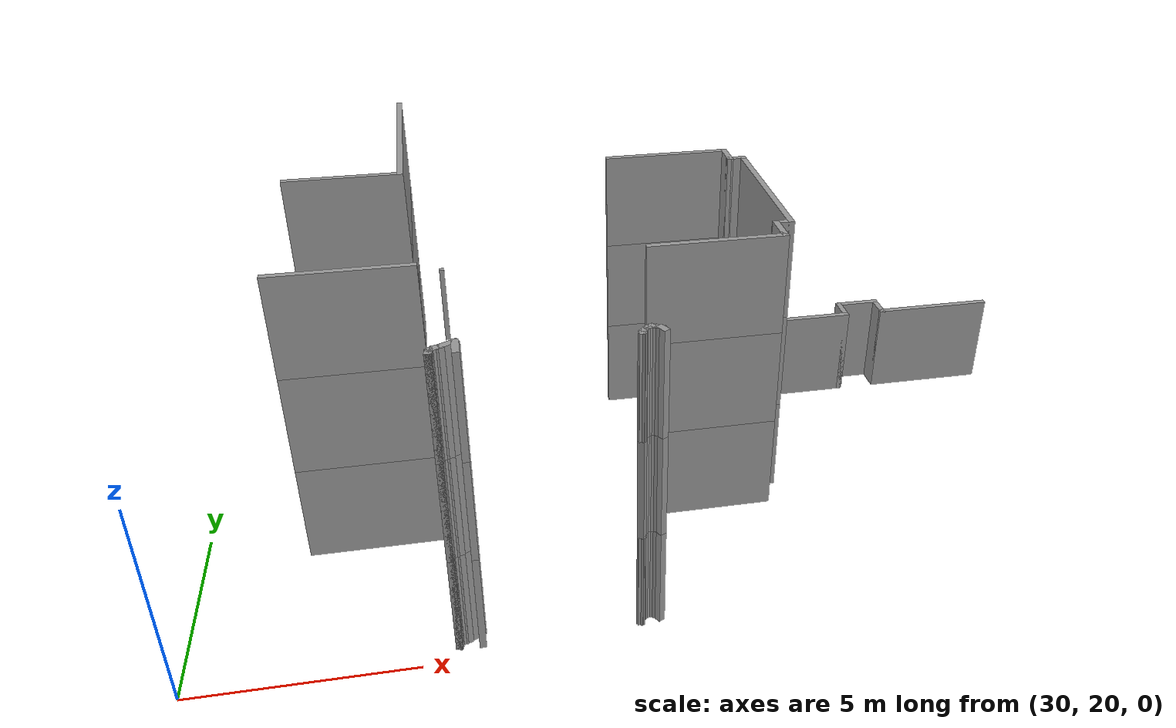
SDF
<sdf version="1.7">
 <model name="mapagazebo">
  <pose>-4.67869 9.01252 0 0 -0 0</pose>
  <link name="Wall_1233">
   <collision name="Wall_1233_Collision">
    <geometry><box><size>3.25 0.15 2.5</size></box></geometry>
    <pose>0 0 1.25 0 -0 0</pose>
   </collision>
   <visual name="Wall_1233_Visual">
    <pose>0 0 1.25 0 -0 0</pose>
    <geometry><box><size>3.25 0.15 2.5</size></box></geometry>
    <material>
     <script><uri>file://media/materials/scripts/gazebo.material</uri><name>Gazebo/Grey</name></script>
     <ambient>1 1 1 1</ambient>
    </material>
    <meta><layer>1</layer></meta>
   </visual>
   <pose>38.7249 15.127 2.5 0 -0 3.14159</pose>
  </link>
  <link name="Wall_1239">
   <collision name="Wall_1239_Collision">
    <geometry><box><size>3 0.15 2.5</size></box></geometry>
    <pose>0 0 1.25 0 -0 0</pose>
   </collision>
   <visual name="Wall_1239_Visual">
    <pose>0 0 1.25 0 -0 0</pose>
    <geometry><box><size>3 0.15 2.5</size></box></geometry>
    <material>
     <script><uri>file://media/materials/scripts/gazebo.material</uri><name>Gazebo/Grey</name></script>
     <ambient>1 1 1 1</ambient>
    </material>
    <meta><layer>1</layer></meta>
   </visual>
   <pose>38.5999 20.427 2.5 0 -0 0</pose>
  </link>
  <link name="Wall_1240">
   <collision name="Wall_1240_Collision">
    <geometry><box><size>5.75 0.15 2.5</size></box></geometry>
    <pose>0 0 1.25 0 -0 0</pose>
   </collision>
   <visual name="Wall_1240_Visual">
    <pose>0 0 1.25 0 -0 0</pose>
    <geometry><box><size>5.75 0.15 2.5</size></box></geometry>
    <material>
     <script><uri>file://media/materials/scripts/gazebo.material</uri><name>Gazebo/Grey</name></script>
     <ambient>1 1 1 1</ambient>
    </material>
    <meta><layer>1</layer></meta>
   </visual>
   <pose>40.0249 23.227 2.5 0 -0 1.5708</pose>
  </link>
  <link name="Wall_1244">
   <collision name="Wall_1244_Collision">
    <geometry><box><size>3.25 0.15 2.5</size></box></geometry>
    <pose>0 0 1.25 0 -0 0</pose>
   </collision>
   <visual name="Wall_1244_Visual">
    <pose>0 0 1.25 0 -0 0</pose>
    <geometry><box><size>3.25 0.15 2.5</size></box></geometry>
    <material>
     <script><uri>file://media/materials/scripts/gazebo.material</uri><name>Gazebo/Grey</name></script>
     <ambient>1 1 1 1</ambient>
    </material>
    <meta><layer>1</layer></meta>
   </visual>
   <pose>46.9249 20.527 2.5 0 -0 0</pose>
  </link>
  <link name="Wall_1245">
   <collision name="Wall_1245_Collision">
    <geometry><box><size>0.75 0.15 2.5</size></box></geometry>
    <pose>0 0 1.25 0 -0 0</pose>
   </collision>
   <visual name="Wall_1245_Visual">
    <pose>0 0 1.25 0 -0 0</pose>
    <geometry><box><size>0.75 0.15 2.5</size></box></geometry>
    <material>
     <script><uri>file://media/materials/scripts/gazebo.material</uri><name>Gazebo/Grey</name></script>
     <ambient>1 1 1 1</ambient>
    </material>
    <meta><layer>1</layer></meta>
   </visual>
   <pose>48.4749 20.227 2.5 0 -0 -1.5708</pose>
  </link>
  <link name="Wall_1246">
   <collision name="Wall_1246_Collision">
    <geometry><box><size>0.5 0.15 2.5</size></box></geometry>
    <pose>0 0 1.25 0 -0 0</pose>
   </collision>
   <visual name="Wall_1246_Visual">
    <pose>0 0 1.25 0 -0 0</pose>
    <geometry><box><size>0.5 0.15 2.5</size></box></geometry>
    <material>
     <script><uri>file://media/materials/scripts/gazebo.material</uri><name>Gazebo/Grey</name></script>
     <ambient>1 1 1 1</ambient>
    </material>
    <meta><layer>1</layer></meta>
   </visual>
   <pose>48.6499 19.927 2.5 0 -0 0</pose>
  </link>
  <link name="Wall_1247">
   <collision name="Wall_1247_Collision">
    <geometry><box><size>4.25 0.15 2.5</size></box></geometry>
    <pose>0 0 1.25 0 -0 0</pose>
   </collision>
   <visual name="Wall_1247_Visual">
    <pose>0 0 1.25 0 -0 0</pose>
    <geometry><box><size>4.25 0.15 2.5</size></box></geometry>
    <material>
     <script><uri>file://media/materials/scripts/gazebo.material</uri><name>Gazebo/Grey</name></script>
     <ambient>1 1 1 1</ambient>
    </material>
    <meta><layer>1</layer></meta>
   </visual>
   <pose>48.8249 17.877 2.5 0 -0 -1.5708</pose>
  </link>
  <link name="Wall_1248">
   <collision name="Wall_1248_Collision">
    <geometry><box><size>0.5 0.15 2.5</size></box></geometry>
    <pose>0 0 1.25 0 -0 0</pose>
   </collision>
   <visual name="Wall_1248_Visual">
    <pose>0 0 1.25 0 -0 0</pose>
    <geometry><box><size>0.5 0.15 2.5</size></box></geometry>
    <material>
     <script><uri>file://media/materials/scripts/gazebo.material</uri><name>Gazebo/Grey</name></script>
     <ambient>1 1 1 1</ambient>
    </material>
    <meta><layer>1</layer></meta>
   </visual>
   <pose>48.6499 15.827 2.5 0 -0 3.14159</pose>
  </link>
  <link name="Wall_1249">
   <collision name="Wall_1249_Collision">
    <geometry><box><size>0.75 0.15 2.5</size></box></geometry>
    <pose>0 0 1.25 0 -0 0</pose>
   </collision>
   <visual name="Wall_1249_Visual">
    <pose>0 0 1.25 0 -0 0</pose>
    <geometry><box><size>0.75 0.15 2.5</size></box></geometry>
    <material>
     <script><uri>file://media/materials/scripts/gazebo.material</uri><name>Gazebo/Grey</name></script>
     <ambient>1 1 1 1</ambient>
    </material>
    <meta><layer>1</layer></meta>
   </visual>
   <pose>48.4749 15.527 2.5 0 -0 -1.5708</pose>
  </link>
  <link name="Wall_1250">
   <collision name="Wall_1250_Collision">
    <geometry><box><size>0.25 0.15 2.5</size></box></geometry>
    <pose>0 0 1.25 0 -0 0</pose>
   </collision>
   <visual name="Wall_1250_Visual">
    <pose>0 0 1.25 0 -0 0</pose>
    <geometry><box><size>0.25 0.15 2.5</size></box></geometry>
    <material>
     <script><uri>file://media/materials/scripts/gazebo.material</uri><name>Gazebo/Grey</name></script>
     <ambient>1 1 1 1</ambient>
    </material>
    <meta><layer>1</layer></meta>
   </visual>
   <pose>48.4749 15.177 2.5 0 -0 -1.5708</pose>
  </link>
  <link name="Wall_1251">
   <collision name="Wall_1251_Collision">
    <geometry><box><size>3.25 0.15 2.5</size></box></geometry>
    <pose>0 0 1.25 0 -0 0</pose>
   </collision>
   <visual name="Wall_1251_Visual">
    <pose>0 0 1.25 0 -0 0</pose>
    <geometry><box><size>3.25 0.15 2.5</size></box></geometry>
    <material>
     <script><uri>file://media/materials/scripts/gazebo.material</uri><name>Gazebo/Grey</name></script>
     <ambient>1 1 1 1</ambient>
    </material>
    <meta><layer>1</layer></meta>
   </visual>
   <pose>46.9249 15.127 2.5 0 -0 3.14159</pose>
  </link>
  <link name="Wall_1259">
   <collision name="Wall_1259_Collision">
    <geometry><box><size>0.25 0.15 2.5</size></box></geometry>
    <pose>0 0 1.25 0 -0 0</pose>
   </collision>
   <visual name="Wall_1259_Visual">
    <pose>0 0 1.25 0 -0 0</pose>
    <geometry><box><size>0.25 0.15 2.5</size></box></geometry>
    <material>
     <script><uri>file://media/materials/scripts/gazebo.material</uri><name>Gazebo/Grey</name></script>
     <ambient>1 1 1 1</ambient>
    </material>
    <meta><layer>1</layer></meta>
   </visual>
   <pose>40.5051 11.4482 2.5 0 -0 1.309</pose>
  </link>
  <link name="Wall_1260">
   <collision name="Wall_1260_Collision">
    <geometry><box><size>0.25 0.15 2.5</size></box></geometry>
    <pose>0 0 1.25 0 -0 0</pose>
   </collision>
   <visual name="Wall_1260_Visual">
    <pose>0 0 1.25 0 -0 0</pose>
    <geometry><box><size>0.25 0.15 2.5</size></box></geometry>
    <material>
     <script><uri>file://media/materials/scripts/gazebo.material</uri><name>Gazebo/Grey</name></script>
     <ambient>1 1 1 1</ambient>
    </material>
    <meta><layer>1</layer></meta>
   </visual>
   <pose>40.5051 11.4482 2.5 0 -0 -1.8326</pose>
  </link>
  <link name="Wall_1261">
   <collision name="Wall_1261_Collision">
    <geometry><box><size>0.25 0.15 2.5</size></box></geometry>
    <pose>0 0 1.25 0 -0 0</pose>
   </collision>
   <visual name="Wall_1261_Visual">
    <pose>0 0 1.25 0 -0 0</pose>
    <geometry><box><size>0.25 0.15 2.5</size></box></geometry>
    <material>
     <script><uri>file://media/materials/scripts/gazebo.material</uri><name>Gazebo/Grey</name></script>
     <ambient>1 1 1 1</ambient>
    </material>
    <meta><layer>1</layer></meta>
   </visual>
   <pose>40.5051 11.4482 2.5 0 -0 1.309</pose>
  </link>
  <link name="Wall_1262">
   <collision name="Wall_1262_Collision">
    <geometry><box><size>0.25 0.15 2.5</size></box></geometry>
    <pose>0 0 1.25 0 -0 0</pose>
   </collision>
   <visual name="Wall_1262_Visual">
    <pose>0 0 1.25 0 -0 0</pose>
    <geometry><box><size>0.25 0.15 2.5</size></box></geometry>
    <material>
     <script><uri>file://media/materials/scripts/gazebo.material</uri><name>Gazebo/Grey</name></script>
     <ambient>1 1 1 1</ambient>
    </material>
    <meta><layer>1</layer></meta>
   </visual>
   <pose>40.5613 11.5215 2.5 0 -0 0.523599</pose>
  </link>
  <link name="Wall_1263">
   <collision name="Wall_1263_Collision">
    <geometry><box><size>0.15 0.15 2.5</size></box></geometry>
    <pose>0 0 1.25 0 -0 0</pose>
   </collision>
   <visual name="Wall_1263_Visual">
    <pose>0 0 1.25 0 -0 0</pose>
    <geometry><box><size>0.15 0.15 2.5</size></box></geometry>
    <material>
     <script><uri>file://media/materials/scripts/gazebo.material</uri><name>Gazebo/Grey</name></script>
     <ambient>1 1 1 1</ambient>
    </material>
    <meta><layer>1</layer></meta>
   </visual>
   <pose>40.6046 11.5465 2.5 0 -0 0</pose>
  </link>
  <link name="Wall_1264">
   <collision name="Wall_1264_Collision">
    <geometry><box><size>0.25 0.15 2.5</size></box></geometry>
    <pose>0 0 1.25 0 -0 0</pose>
   </collision>
   <visual name="Wall_1264_Visual">
    <pose>0 0 1.25 0 -0 0</pose>
    <geometry><box><size>0.25 0.15 2.5</size></box></geometry>
    <material>
     <script><uri>file://media/materials/scripts/gazebo.material</uri><name>Gazebo/Grey</name></script>
     <ambient>1 1 1 1</ambient>
    </material>
    <meta><layer>1</layer></meta>
   </visual>
   <pose>40.6529 11.5595 2.5 0 -0 0.261799</pose>
  </link>
  <link name="Wall_1272">
   <collision name="Wall_1272_Collision">
    <geometry><box><size>0.5 0.15 2.5</size></box></geometry>
    <pose>0 0 1.25 0 -0 0</pose>
   </collision>
   <visual name="Wall_1272_Visual">
    <pose>0 0 1.25 0 -0 0</pose>
    <geometry><box><size>0.5 0.15 2.5</size></box></geometry>
    <material>
     <script><uri>file://media/materials/scripts/gazebo.material</uri><name>Gazebo/Grey</name></script>
     <ambient>1 1 1 1</ambient>
    </material>
    <meta><layer>1</layer></meta>
   </visual>
   <pose>40.985 11.5508 2.5 0 -0 1.5708</pose>
  </link>
  <link name="Wall_1273">
   <collision name="Wall_1273_Collision">
    <geometry><box><size>0.670196 0.15 2.5</size></box></geometry>
    <pose>0 0 1.25 0 -0 0</pose>
   </collision>
   <visual name="Wall_1273_Visual">
    <pose>0 0 1.25 0 -0 0</pose>
    <geometry><box><size>0.670196 0.15 2.5</size></box></geometry>
    <material>
     <script><uri>file://media/materials/scripts/gazebo.material</uri><name>Gazebo/Grey</name></script>
     <ambient>1 1 1 1</ambient>
    </material>
    <meta><layer>1</layer></meta>
   </visual>
   <pose>40.7515 11.6111 2.5 0 -0 -2.68526</pose>
  </link>
  <link name="Wall_1276">
   <collision name="Wall_1276_Collision">
    <geometry><box><size>0.25 0.15 2.5</size></box></geometry>
    <pose>0 0 1.25 0 -0 0</pose>
   </collision>
   <visual name="Wall_1276_Visual">
    <pose>0 0 1.25 0 -0 0</pose>
    <geometry><box><size>0.25 0.15 2.5</size></box></geometry>
    <material>
     <script><uri>file://media/materials/scripts/gazebo.material</uri><name>Gazebo/Grey</name></script>
     <ambient>1 1 1 1</ambient>
    </material>
    <meta><layer>1</layer></meta>
   </visual>
   <pose>44.5236 11.4559 2.5 0 -0 1.0472</pose>
  </link>
  <link name="Wall_1277">
   <collision name="Wall_1277_Collision">
    <geometry><box><size>0.25 0.15 2.5</size></box></geometry>
    <pose>0 0 1.25 0 -0 0</pose>
   </collision>
   <visual name="Wall_1277_Visual">
    <pose>0 0 1.25 0 -0 0</pose>
    <geometry><box><size>0.25 0.15 2.5</size></box></geometry>
    <material>
     <script><uri>file://media/materials/scripts/gazebo.material</uri><name>Gazebo/Grey</name></script>
     <ambient>1 1 1 1</ambient>
    </material>
    <meta><layer>1</layer></meta>
   </visual>
   <pose>44.584 11.5345 2.5 0 -0 0.785398</pose>
  </link>
  <link name="Wall_1278">
   <collision name="Wall_1278_Collision">
    <geometry><box><size>0.25 0.15 2.5</size></box></geometry>
    <pose>0 0 1.25 0 -0 0</pose>
   </collision>
   <visual name="Wall_1278_Visual">
    <pose>0 0 1.25 0 -0 0</pose>
    <geometry><box><size>0.25 0.15 2.5</size></box></geometry>
    <material>
     <script><uri>file://media/materials/scripts/gazebo.material</uri><name>Gazebo/Grey</name></script>
     <ambient>1 1 1 1</ambient>
    </material>
    <meta><layer>1</layer></meta>
   </visual>
   <pose>44.6627 11.5949 2.5 0 -0 0.523599</pose>
  </link>
  <link name="Wall_1279">
   <collision name="Wall_1279_Collision">
    <geometry><box><size>0.25 0.15 2.5</size></box></geometry>
    <pose>0 0 1.25 0 -0 0</pose>
   </collision>
   <visual name="Wall_1279_Visual">
    <pose>0 0 1.25 0 -0 0</pose>
    <geometry><box><size>0.25 0.15 2.5</size></box></geometry>
    <material>
     <script><uri>file://media/materials/scripts/gazebo.material</uri><name>Gazebo/Grey</name></script>
     <ambient>1 1 1 1</ambient>
    </material>
    <meta><layer>1</layer></meta>
   </visual>
   <pose>44.7543 11.607 2.5 0 -0 -0.261799</pose>
  </link>
  <link name="Wall_1280">
   <collision name="Wall_1280_Collision">
    <geometry><box><size>0.25 0.15 2.5</size></box></geometry>
    <pose>0 0 1.25 0 -0 0</pose>
   </collision>
   <visual name="Wall_1280_Visual">
    <pose>0 0 1.25 0 -0 0</pose>
    <geometry><box><size>0.25 0.15 2.5</size></box></geometry>
    <material>
     <script><uri>file://media/materials/scripts/gazebo.material</uri><name>Gazebo/Grey</name></script>
     <ambient>1 1 1 1</ambient>
    </material>
    <meta><layer>1</layer></meta>
   </visual>
   <pose>44.8458 11.569 2.5 0 -0 -0.523599</pose>
  </link>
  <link name="Wall_1281">
   <collision name="Wall_1281_Collision">
    <geometry><box><size>0.25 0.15 2.5</size></box></geometry>
    <pose>0 0 1.25 0 -0 0</pose>
   </collision>
   <visual name="Wall_1281_Visual">
    <pose>0 0 1.25 0 -0 0</pose>
    <geometry><box><size>0.25 0.15 2.5</size></box></geometry>
    <material>
     <script><uri>file://media/materials/scripts/gazebo.material</uri><name>Gazebo/Grey</name></script>
     <ambient>1 1 1 1</ambient>
    </material>
    <meta><layer>1</layer></meta>
   </visual>
   <pose>44.9142 11.5007 2.5 0 -0 -1.0472</pose>
  </link>
  <link name="Wall_1857">
   <collision name="Wall_1857_Collision">
    <geometry><box><size>3.25 0.15 2.5</size></box></geometry>
    <pose>0 0 1.25 0 -0 0</pose>
   </collision>
   <visual name="Wall_1857_Visual">
    <pose>0 0 1.25 0 -0 0</pose>
    <geometry><box><size>3.25 0.15 2.5</size></box></geometry>
    <material>
     <script><uri>file://media/materials/scripts/gazebo.material</uri><name>Gazebo/Grey</name></script>
     <ambient>1 1 1 1</ambient>
    </material>
    <meta><layer>2</layer></meta>
   </visual>
   <pose>38.7249 15.127 5 0 -0 3.14159</pose>
  </link>
  <link name="Wall_1863">
   <collision name="Wall_1863_Collision">
    <geometry><box><size>3 0.15 2.5</size></box></geometry>
    <pose>0 0 1.25 0 -0 0</pose>
   </collision>
   <visual name="Wall_1863_Visual">
    <pose>0 0 1.25 0 -0 0</pose>
    <geometry><box><size>3 0.15 2.5</size></box></geometry>
    <material>
     <script><uri>file://media/materials/scripts/gazebo.material</uri><name>Gazebo/Grey</name></script>
     <ambient>1 1 1 1</ambient>
    </material>
    <meta><layer>2</layer></meta>
   </visual>
   <pose>38.5999 20.427 5 0 -0 0</pose>
  </link>
  <link name="Wall_1864">
   <collision name="Wall_1864_Collision">
    <geometry><box><size>5.75 0.15 2.5</size></box></geometry>
    <pose>0 0 1.25 0 -0 0</pose>
   </collision>
   <visual name="Wall_1864_Visual">
    <pose>0 0 1.25 0 -0 0</pose>
    <geometry><box><size>5.75 0.15 2.5</size></box></geometry>
    <material>
     <script><uri>file://media/materials/scripts/gazebo.material</uri><name>Gazebo/Grey</name></script>
     <ambient>1 1 1 1</ambient>
    </material>
    <meta><layer>2</layer></meta>
   </visual>
   <pose>40.0249 23.227 5 0 -0 1.5708</pose>
  </link>
  <link name="Wall_1868">
   <collision name="Wall_1868_Collision">
    <geometry><box><size>3.25 0.15 2.5</size></box></geometry>
    <pose>0 0 1.25 0 -0 0</pose>
   </collision>
   <visual name="Wall_1868_Visual">
    <pose>0 0 1.25 0 -0 0</pose>
    <geometry><box><size>3.25 0.15 2.5</size></box></geometry>
    <material>
     <script><uri>file://media/materials/scripts/gazebo.material</uri><name>Gazebo/Grey</name></script>
     <ambient>1 1 1 1</ambient>
    </material>
    <meta><layer>2</layer></meta>
   </visual>
   <pose>46.9249 20.527 5 0 -0 0</pose>
  </link>
  <link name="Wall_1869">
   <collision name="Wall_1869_Collision">
    <geometry><box><size>0.75 0.15 2.5</size></box></geometry>
    <pose>0 0 1.25 0 -0 0</pose>
   </collision>
   <visual name="Wall_1869_Visual">
    <pose>0 0 1.25 0 -0 0</pose>
    <geometry><box><size>0.75 0.15 2.5</size></box></geometry>
    <material>
     <script><uri>file://media/materials/scripts/gazebo.material</uri><name>Gazebo/Grey</name></script>
     <ambient>1 1 1 1</ambient>
    </material>
    <meta><layer>2</layer></meta>
   </visual>
   <pose>48.4749 20.227 5 0 -0 -1.5708</pose>
  </link>
  <link name="Wall_1870">
   <collision name="Wall_1870_Collision">
    <geometry><box><size>0.5 0.15 2.5</size></box></geometry>
    <pose>0 0 1.25 0 -0 0</pose>
   </collision>
   <visual name="Wall_1870_Visual">
    <pose>0 0 1.25 0 -0 0</pose>
    <geometry><box><size>0.5 0.15 2.5</size></box></geometry>
    <material>
     <script><uri>file://media/materials/scripts/gazebo.material</uri><name>Gazebo/Grey</name></script>
     <ambient>1 1 1 1</ambient>
    </material>
    <meta><layer>2</layer></meta>
   </visual>
   <pose>48.6499 19.927 5 0 -0 0</pose>
  </link>
  <link name="Wall_1871">
   <collision name="Wall_1871_Collision">
    <geometry><box><size>4.25 0.15 2.5</size></box></geometry>
    <pose>0 0 1.25 0 -0 0</pose>
   </collision>
   <visual name="Wall_1871_Visual">
    <pose>0 0 1.25 0 -0 0</pose>
    <geometry><box><size>4.25 0.15 2.5</size></box></geometry>
    <material>
     <script><uri>file://media/materials/scripts/gazebo.material</uri><name>Gazebo/Grey</name></script>
     <ambient>1 1 1 1</ambient>
    </material>
    <meta><layer>2</layer></meta>
   </visual>
   <pose>48.8249 17.877 5 0 -0 -1.5708</pose>
  </link>
  <link name="Wall_1872">
   <collision name="Wall_1872_Collision">
    <geometry><box><size>0.5 0.15 2.5</size></box></geometry>
    <pose>0 0 1.25 0 -0 0</pose>
   </collision>
   <visual name="Wall_1872_Visual">
    <pose>0 0 1.25 0 -0 0</pose>
    <geometry><box><size>0.5 0.15 2.5</size></box></geometry>
    <material>
     <script><uri>file://media/materials/scripts/gazebo.material</uri><name>Gazebo/Grey</name></script>
     <ambient>1 1 1 1</ambient>
    </material>
    <meta><layer>2</layer></meta>
   </visual>
   <pose>48.6499 15.827 5 0 -0 3.14159</pose>
  </link>
  <link name="Wall_1873">
   <collision name="Wall_1873_Collision">
    <geometry><box><size>0.75 0.15 2.5</size></box></geometry>
    <pose>0 0 1.25 0 -0 0</pose>
   </collision>
   <visual name="Wall_1873_Visual">
    <pose>0 0 1.25 0 -0 0</pose>
    <geometry><box><size>0.75 0.15 2.5</size></box></geometry>
    <material>
     <script><uri>file://media/materials/scripts/gazebo.material</uri><name>Gazebo/Grey</name></script>
     <ambient>1 1 1 1</ambient>
    </material>
    <meta><layer>2</layer></meta>
   </visual>
   <pose>48.4749 15.527 5 0 -0 -1.5708</pose>
  </link>
  <link name="Wall_1874">
   <collision name="Wall_1874_Collision">
    <geometry><box><size>0.25 0.15 2.5</size></box></geometry>
    <pose>0 0 1.25 0 -0 0</pose>
   </collision>
   <visual name="Wall_1874_Visual">
    <pose>0 0 1.25 0 -0 0</pose>
    <geometry><box><size>0.25 0.15 2.5</size></box></geometry>
    <material>
     <script><uri>file://media/materials/scripts/gazebo.material</uri><name>Gazebo/Grey</name></script>
     <ambient>1 1 1 1</ambient>
    </material>
    <meta><layer>2</layer></meta>
   </visual>
   <pose>48.4749 15.177 5 0 -0 -1.5708</pose>
  </link>
  <link name="Wall_1875">
   <collision name="Wall_1875_Collision">
    <geometry><box><size>3.25 0.15 2.5</size></box></geometry>
    <pose>0 0 1.25 0 -0 0</pose>
   </collision>
   <visual name="Wall_1875_Visual">
    <pose>0 0 1.25 0 -0 0</pose>
    <geometry><box><size>3.25 0.15 2.5</size></box></geometry>
    <material>
     <script><uri>file://media/materials/scripts/gazebo.material</uri><name>Gazebo/Grey</name></script>
     <ambient>1 1 1 1</ambient>
    </material>
    <meta><layer>2</layer></meta>
   </visual>
   <pose>46.9249 15.127 5 0 -0 3.14159</pose>
  </link>
  <link name="Wall_1883">
   <collision name="Wall_1883_Collision">
    <geometry><box><size>0.25 0.15 2.5</size></box></geometry>
    <pose>0 0 1.25 0 -0 0</pose>
   </collision>
   <visual name="Wall_1883_Visual">
    <pose>0 0 1.25 0 -0 0</pose>
    <geometry><box><size>0.25 0.15 2.5</size></box></geometry>
    <material>
     <script><uri>file://media/materials/scripts/gazebo.material</uri><name>Gazebo/Grey</name></script>
     <ambient>1 1 1 1</ambient>
    </material>
    <meta><layer>2</layer></meta>
   </visual>
   <pose>40.5051 11.4482 5 0 -0 1.309</pose>
  </link>
  <link name="Wall_1884">
   <collision name="Wall_1884_Collision">
    <geometry><box><size>0.25 0.15 2.5</size></box></geometry>
    <pose>0 0 1.25 0 -0 0</pose>
   </collision>
   <visual name="Wall_1884_Visual">
    <pose>0 0 1.25 0 -0 0</pose>
    <geometry><box><size>0.25 0.15 2.5</size></box></geometry>
    <material>
     <script><uri>file://media/materials/scripts/gazebo.material</uri><name>Gazebo/Grey</name></script>
     <ambient>1 1 1 1</ambient>
    </material>
    <meta><layer>2</layer></meta>
   </visual>
   <pose>40.5051 11.4482 5 0 -0 -1.8326</pose>
  </link>
  <link name="Wall_1885">
   <collision name="Wall_1885_Collision">
    <geometry><box><size>0.25 0.15 2.5</size></box></geometry>
    <pose>0 0 1.25 0 -0 0</pose>
   </collision>
   <visual name="Wall_1885_Visual">
    <pose>0 0 1.25 0 -0 0</pose>
    <geometry><box><size>0.25 0.15 2.5</size></box></geometry>
    <material>
     <script><uri>file://media/materials/scripts/gazebo.material</uri><name>Gazebo/Grey</name></script>
     <ambient>1 1 1 1</ambient>
    </material>
    <meta><layer>2</layer></meta>
   </visual>
   <pose>40.5051 11.4482 5 0 -0 1.309</pose>
  </link>
  <link name="Wall_1886">
   <collision name="Wall_1886_Collision">
    <geometry><box><size>0.25 0.15 2.5</size></box></geometry>
    <pose>0 0 1.25 0 -0 0</pose>
   </collision>
   <visual name="Wall_1886_Visual">
    <pose>0 0 1.25 0 -0 0</pose>
    <geometry><box><size>0.25 0.15 2.5</size></box></geometry>
    <material>
     <script><uri>file://media/materials/scripts/gazebo.material</uri><name>Gazebo/Grey</name></script>
     <ambient>1 1 1 1</ambient>
    </material>
    <meta><layer>2</layer></meta>
   </visual>
   <pose>40.5613 11.5215 5 0 -0 0.523599</pose>
  </link>
  <link name="Wall_1887">
   <collision name="Wall_1887_Collision">
    <geometry><box><size>0.15 0.15 2.5</size></box></geometry>
    <pose>0 0 1.25 0 -0 0</pose>
   </collision>
   <visual name="Wall_1887_Visual">
    <pose>0 0 1.25 0 -0 0</pose>
    <geometry><box><size>0.15 0.15 2.5</size></box></geometry>
    <material>
     <script><uri>file://media/materials/scripts/gazebo.material</uri><name>Gazebo/Grey</name></script>
     <ambient>1 1 1 1</ambient>
    </material>
    <meta><layer>2</layer></meta>
   </visual>
   <pose>40.6046 11.5465 5 0 -0 0</pose>
  </link>
  <link name="Wall_1888">
   <collision name="Wall_1888_Collision">
    <geometry><box><size>0.25 0.15 2.5</size></box></geometry>
    <pose>0 0 1.25 0 -0 0</pose>
   </collision>
   <visual name="Wall_1888_Visual">
    <pose>0 0 1.25 0 -0 0</pose>
    <geometry><box><size>0.25 0.15 2.5</size></box></geometry>
    <material>
     <script><uri>file://media/materials/scripts/gazebo.material</uri><name>Gazebo/Grey</name></script>
     <ambient>1 1 1 1</ambient>
    </material>
    <meta><layer>2</layer></meta>
   </visual>
   <pose>40.6529 11.5595 5 0 -0 0.261799</pose>
  </link>
  <link name="Wall_1896">
   <collision name="Wall_1896_Collision">
    <geometry><box><size>0.5 0.15 2.5</size></box></geometry>
    <pose>0 0 1.25 0 -0 0</pose>
   </collision>
   <visual name="Wall_1896_Visual">
    <pose>0 0 1.25 0 -0 0</pose>
    <geometry><box><size>0.5 0.15 2.5</size></box></geometry>
    <material>
     <script><uri>file://media/materials/scripts/gazebo.material</uri><name>Gazebo/Grey</name></script>
     <ambient>1 1 1 1</ambient>
    </material>
    <meta><layer>2</layer></meta>
   </visual>
   <pose>40.985 11.5508 5 0 -0 1.5708</pose>
  </link>
  <link name="Wall_1897">
   <collision name="Wall_1897_Collision">
    <geometry><box><size>0.670196 0.15 2.5</size></box></geometry>
    <pose>0 0 1.25 0 -0 0</pose>
   </collision>
   <visual name="Wall_1897_Visual">
    <pose>0 0 1.25 0 -0 0</pose>
    <geometry><box><size>0.670196 0.15 2.5</size></box></geometry>
    <material>
     <script><uri>file://media/materials/scripts/gazebo.material</uri><name>Gazebo/Grey</name></script>
     <ambient>1 1 1 1</ambient>
    </material>
    <meta><layer>2</layer></meta>
   </visual>
   <pose>40.7515 11.6111 5 0 -0 -2.68526</pose>
  </link>
  <link name="Wall_1899">
   <collision name="Wall_1899_Collision">
    <geometry><box><size>0.15 0.15 2.5</size></box></geometry>
    <pose>0 0 1.25 0 -0 0</pose>
   </collision>
   <visual name="Wall_1899_Visual">
    <pose>0 0 1.25 0 -0 0</pose>
    <geometry><box><size>0.15 0.15 2.5</size></box></geometry>
    <material>
     <script><uri>file://media/materials/scripts/gazebo.material</uri><name>Gazebo/Grey</name></script>
     <ambient>1 1 1 1</ambient>
    </material>
    <meta><layer>2</layer></meta>
   </visual>
   <pose>44.4986 11.4126 5 0 -0 0</pose>
  </link>
  <link name="Wall_1900">
   <collision name="Wall_1900_Collision">
    <geometry><box><size>0.25 0.15 2.5</size></box></geometry>
    <pose>0 0 1.25 0 -0 0</pose>
   </collision>
   <visual name="Wall_1900_Visual">
    <pose>0 0 1.25 0 -0 0</pose>
    <geometry><box><size>0.25 0.15 2.5</size></box></geometry>
    <material>
     <script><uri>file://media/materials/scripts/gazebo.material</uri><name>Gazebo/Grey</name></script>
     <ambient>1 1 1 1</ambient>
    </material>
    <meta><layer>2</layer></meta>
   </visual>
   <pose>44.5236 11.4559 5 0 -0 1.0472</pose>
  </link>
  <link name="Wall_1901">
   <collision name="Wall_1901_Collision">
    <geometry><box><size>0.25 0.15 2.5</size></box></geometry>
    <pose>0 0 1.25 0 -0 0</pose>
   </collision>
   <visual name="Wall_1901_Visual">
    <pose>0 0 1.25 0 -0 0</pose>
    <geometry><box><size>0.25 0.15 2.5</size></box></geometry>
    <material>
     <script><uri>file://media/materials/scripts/gazebo.material</uri><name>Gazebo/Grey</name></script>
     <ambient>1 1 1 1</ambient>
    </material>
    <meta><layer>2</layer></meta>
   </visual>
   <pose>44.584 11.5345 5 0 -0 0.785398</pose>
  </link>
  <link name="Wall_1902">
   <collision name="Wall_1902_Collision">
    <geometry><box><size>0.25 0.15 2.5</size></box></geometry>
    <pose>0 0 1.25 0 -0 0</pose>
   </collision>
   <visual name="Wall_1902_Visual">
    <pose>0 0 1.25 0 -0 0</pose>
    <geometry><box><size>0.25 0.15 2.5</size></box></geometry>
    <material>
     <script><uri>file://media/materials/scripts/gazebo.material</uri><name>Gazebo/Grey</name></script>
     <ambient>1 1 1 1</ambient>
    </material>
    <meta><layer>2</layer></meta>
   </visual>
   <pose>44.6627 11.5949 5 0 -0 0.523599</pose>
  </link>
  <link name="Wall_1903">
   <collision name="Wall_1903_Collision">
    <geometry><box><size>0.25 0.15 2.5</size></box></geometry>
    <pose>0 0 1.25 0 -0 0</pose>
   </collision>
   <visual name="Wall_1903_Visual">
    <pose>0 0 1.25 0 -0 0</pose>
    <geometry><box><size>0.25 0.15 2.5</size></box></geometry>
    <material>
     <script><uri>file://media/materials/scripts/gazebo.material</uri><name>Gazebo/Grey</name></script>
     <ambient>1 1 1 1</ambient>
    </material>
    <meta><layer>2</layer></meta>
   </visual>
   <pose>44.7543 11.607 5 0 -0 -0.261799</pose>
  </link>
  <link name="Wall_1904">
   <collision name="Wall_1904_Collision">
    <geometry><box><size>0.25 0.15 2.5</size></box></geometry>
    <pose>0 0 1.25 0 -0 0</pose>
   </collision>
   <visual name="Wall_1904_Visual">
    <pose>0 0 1.25 0 -0 0</pose>
    <geometry><box><size>0.25 0.15 2.5</size></box></geometry>
    <material>
     <script><uri>file://media/materials/scripts/gazebo.material</uri><name>Gazebo/Grey</name></script>
     <ambient>1 1 1 1</ambient>
    </material>
    <meta><layer>2</layer></meta>
   </visual>
   <pose>44.8458 11.569 5 0 -0 -0.523599</pose>
  </link>
  <link name="Wall_1905">
   <collision name="Wall_1905_Collision">
    <geometry><box><size>0.25 0.15 2.5</size></box></geometry>
    <pose>0 0 1.25 0 -0 0</pose>
   </collision>
   <visual name="Wall_1905_Visual">
    <pose>0 0 1.25 0 -0 0</pose>
    <geometry><box><size>0.25 0.15 2.5</size></box></geometry>
    <material>
     <script><uri>file://media/materials/scripts/gazebo.material</uri><name>Gazebo/Grey</name></script>
     <ambient>1 1 1 1</ambient>
    </material>
    <meta><layer>2</layer></meta>
   </visual>
   <pose>44.9142 11.5007 5 0 -0 -1.0472</pose>
  </link>
  <link name="Wall_2089">
   <collision name="Wall_2089_Collision">
    <geometry><box><size>3.5 0.15 2.5</size></box></geometry>
    <pose>0 0 1.25 0 -0 0</pose>
   </collision>
   <visual name="Wall_2089_Visual">
    <pose>0 0 1.25 0 -0 0</pose>
    <geometry><box><size>3.5 0.15 2.5</size></box></geometry>
    <material>
     <script><uri>file://media/materials/scripts/gazebo.material</uri><name>Gazebo/Grey</name></script>
     <ambient>1 1 1 1</ambient>
    </material>
    <meta><layer>0</layer></meta>
   </visual>
   <pose>50.4999 19.927 0 0 -0 0</pose>
  </link>
  <link name="Wall_2090">
   <collision name="Wall_2090_Collision">
    <geometry><box><size>0.75 0.15 2.5</size></box></geometry>
    <pose>0 0 1.25 0 -0 0</pose>
   </collision>
   <visual name="Wall_2090_Visual">
    <pose>0 0 1.25 0 -0 0</pose>
    <geometry><box><size>0.75 0.15 2.5</size></box></geometry>
    <material>
     <script><uri>file://media/materials/scripts/gazebo.material</uri><name>Gazebo/Grey</name></script>
     <ambient>1 1 1 1</ambient>
    </material>
    <meta><layer>0</layer></meta>
   </visual>
   <pose>52.1749 20.227 0 0 -0 1.5708</pose>
  </link>
  <link name="Wall_2091">
   <collision name="Wall_2091_Collision">
    <geometry><box><size>1.25 0.15 2.5</size></box></geometry>
    <pose>0 0 1.25 0 -0 0</pose>
   </collision>
   <visual name="Wall_2091_Visual">
    <pose>0 0 1.25 0 -0 0</pose>
    <geometry><box><size>1.25 0.15 2.5</size></box></geometry>
    <material>
     <script><uri>file://media/materials/scripts/gazebo.material</uri><name>Gazebo/Grey</name></script>
     <ambient>1 1 1 1</ambient>
    </material>
    <meta><layer>0</layer></meta>
   </visual>
   <pose>52.7249 20.527 0 0 -0 0</pose>
  </link>
  <link name="Wall_2092">
   <collision name="Wall_2092_Collision">
    <geometry><box><size>0.75 0.15 2.5</size></box></geometry>
    <pose>0 0 1.25 0 -0 0</pose>
   </collision>
   <visual name="Wall_2092_Visual">
    <pose>0 0 1.25 0 -0 0</pose>
    <geometry><box><size>0.75 0.15 2.5</size></box></geometry>
    <material>
     <script><uri>file://media/materials/scripts/gazebo.material</uri><name>Gazebo/Grey</name></script>
     <ambient>1 1 1 1</ambient>
    </material>
    <meta><layer>0</layer></meta>
   </visual>
   <pose>53.2749 20.227 0 0 -0 -1.5708</pose>
  </link>
  <link name="Wall_2093">
   <collision name="Wall_2093_Collision">
    <geometry><box><size>3.25 0.15 2.5</size></box></geometry>
    <pose>0 0 1.25 0 -0 0</pose>
   </collision>
   <visual name="Wall_2093_Visual">
    <pose>0 0 1.25 0 -0 0</pose>
    <geometry><box><size>3.25 0.15 2.5</size></box></geometry>
    <material>
     <script><uri>file://media/materials/scripts/gazebo.material</uri><name>Gazebo/Grey</name></script>
     <ambient>1 1 1 1</ambient>
    </material>
    <meta><layer>0</layer></meta>
   </visual>
   <pose>54.8249 19.927 0 0 -0 0</pose>
  </link>
  <link name="Wall_2151">
   <collision name="Wall_2151_Collision">
    <geometry><box><size>0.15 0.15 2.5</size></box></geometry>
    <pose>0 0 1.25 0 -0 0</pose>
   </collision>
   <visual name="Wall_2151_Visual">
    <pose>0 0 1.25 0 -0 0</pose>
    <geometry><box><size>0.15 0.15 2.5</size></box></geometry>
    <material>
     <script><uri>file://media/materials/scripts/gazebo.material</uri><name>Gazebo/Grey</name></script>
     <ambient>1 1 1 1</ambient>
    </material>
    <meta><layer>0</layer></meta>
   </visual>
   <pose>40.7894 24.9589 0 0 -0 0</pose>
  </link>
  <link name="Wall_573">
   <collision name="Wall_573_Collision">
    <geometry><box><size>3.25 0.15 2.5</size></box></geometry>
    <pose>0 0 1.25 0 -0 0</pose>
   </collision>
   <visual name="Wall_573_Visual">
    <pose>0 0 1.25 0 -0 0</pose>
    <geometry><box><size>3.25 0.15 2.5</size></box></geometry>
    <material>
     <script><uri>file://media/materials/scripts/gazebo.material</uri><name>Gazebo/Grey</name></script>
     <ambient>1 1 1 1</ambient>
    </material>
    <meta><layer>0</layer></meta>
   </visual>
   <pose>38.7249 15.127 0 0 -0 3.14159</pose>
  </link>
  <link name="Wall_579">
   <collision name="Wall_579_Collision">
    <geometry><box><size>3 0.15 2.5</size></box></geometry>
    <pose>0 0 1.25 0 -0 0</pose>
   </collision>
   <visual name="Wall_579_Visual">
    <pose>0 0 1.25 0 -0 0</pose>
    <geometry><box><size>3 0.15 2.5</size></box></geometry>
    <material>
     <script><uri>file://media/materials/scripts/gazebo.material</uri><name>Gazebo/Grey</name></script>
     <ambient>1 1 1 1</ambient>
    </material>
    <meta><layer>0</layer></meta>
   </visual>
   <pose>38.5999 20.427 0 0 -0 0</pose>
  </link>
  <link name="Wall_581">
   <collision name="Wall_581_Collision">
    <geometry><box><size>5.75 0.15 2.5</size></box></geometry>
    <pose>0 0 1.25 0 -0 0</pose>
   </collision>
   <visual name="Wall_581_Visual">
    <pose>0 0 1.25 0 -0 0</pose>
    <geometry><box><size>5.75 0.15 2.5</size></box></geometry>
    <material>
     <script><uri>file://media/materials/scripts/gazebo.material</uri><name>Gazebo/Grey</name></script>
     <ambient>1 1 1 1</ambient>
    </material>
    <meta><layer>0</layer></meta>
   </visual>
   <pose>40.0249 23.227 0 0 -0 1.5708</pose>
  </link>
  <link name="Wall_587">
   <collision name="Wall_587_Collision">
    <geometry><box><size>3.25 0.15 2.5</size></box></geometry>
    <pose>0 0 1.25 0 -0 0</pose>
   </collision>
   <visual name="Wall_587_Visual">
    <pose>0 0 1.25 0 -0 0</pose>
    <geometry><box><size>3.25 0.15 2.5</size></box></geometry>
    <material>
     <script><uri>file://media/materials/scripts/gazebo.material</uri><name>Gazebo/Grey</name></script>
     <ambient>1 1 1 1</ambient>
    </material>
    <meta><layer>0</layer></meta>
   </visual>
   <pose>46.9249 20.527 0 0 -0 0</pose>
  </link>
  <link name="Wall_591">
   <collision name="Wall_591_Collision">
    <geometry><box><size>0.75 0.15 2.5</size></box></geometry>
    <pose>0 0 1.25 0 -0 0</pose>
   </collision>
   <visual name="Wall_591_Visual">
    <pose>0 0 1.25 0 -0 0</pose>
    <geometry><box><size>0.75 0.15 2.5</size></box></geometry>
    <material>
     <script><uri>file://media/materials/scripts/gazebo.material</uri><name>Gazebo/Grey</name></script>
     <ambient>1 1 1 1</ambient>
    </material>
    <meta><layer>0</layer></meta>
   </visual>
   <pose>48.4749 20.227 0 0 -0 -1.5708</pose>
  </link>
  <link name="Wall_592">
   <collision name="Wall_592_Collision">
    <geometry><box><size>0.5 0.15 2.5</size></box></geometry>
    <pose>0 0 1.25 0 -0 0</pose>
   </collision>
   <visual name="Wall_592_Visual">
    <pose>0 0 1.25 0 -0 0</pose>
    <geometry><box><size>0.5 0.15 2.5</size></box></geometry>
    <material>
     <script><uri>file://media/materials/scripts/gazebo.material</uri><name>Gazebo/Grey</name></script>
     <ambient>1 1 1 1</ambient>
    </material>
    <meta><layer>0</layer></meta>
   </visual>
   <pose>48.6499 19.927 0 0 -0 0</pose>
  </link>
  <link name="Wall_594">
   <collision name="Wall_594_Collision">
    <geometry><box><size>4.25 0.15 2.5</size></box></geometry>
    <pose>0 0 1.25 0 -0 0</pose>
   </collision>
   <visual name="Wall_594_Visual">
    <pose>0 0 1.25 0 -0 0</pose>
    <geometry><box><size>4.25 0.15 2.5</size></box></geometry>
    <material>
     <script><uri>file://media/materials/scripts/gazebo.material</uri><name>Gazebo/Grey</name></script>
     <ambient>1 1 1 1</ambient>
    </material>
    <meta><layer>0</layer></meta>
   </visual>
   <pose>48.8249 17.877 0 0 -0 -1.5708</pose>
  </link>
  <link name="Wall_597">
   <collision name="Wall_597_Collision">
    <geometry><box><size>0.5 0.15 2.5</size></box></geometry>
    <pose>0 0 1.25 0 -0 0</pose>
   </collision>
   <visual name="Wall_597_Visual">
    <pose>0 0 1.25 0 -0 0</pose>
    <geometry><box><size>0.5 0.15 2.5</size></box></geometry>
    <material>
     <script><uri>file://media/materials/scripts/gazebo.material</uri><name>Gazebo/Grey</name></script>
     <ambient>1 1 1 1</ambient>
    </material>
    <meta><layer>0</layer></meta>
   </visual>
   <pose>48.6499 15.827 0 0 -0 3.14159</pose>
  </link>
  <link name="Wall_598">
   <collision name="Wall_598_Collision">
    <geometry><box><size>0.75 0.15 2.5</size></box></geometry>
    <pose>0 0 1.25 0 -0 0</pose>
   </collision>
   <visual name="Wall_598_Visual">
    <pose>0 0 1.25 0 -0 0</pose>
    <geometry><box><size>0.75 0.15 2.5</size></box></geometry>
    <material>
     <script><uri>file://media/materials/scripts/gazebo.material</uri><name>Gazebo/Grey</name></script>
     <ambient>1 1 1 1</ambient>
    </material>
    <meta><layer>0</layer></meta>
   </visual>
   <pose>48.4749 15.527 0 0 -0 -1.5708</pose>
  </link>
  <link name="Wall_599">
   <collision name="Wall_599_Collision">
    <geometry><box><size>0.25 0.15 2.5</size></box></geometry>
    <pose>0 0 1.25 0 -0 0</pose>
   </collision>
   <visual name="Wall_599_Visual">
    <pose>0 0 1.25 0 -0 0</pose>
    <geometry><box><size>0.25 0.15 2.5</size></box></geometry>
    <material>
     <script><uri>file://media/materials/scripts/gazebo.material</uri><name>Gazebo/Grey</name></script>
     <ambient>1 1 1 1</ambient>
    </material>
    <meta><layer>0</layer></meta>
   </visual>
   <pose>48.4749 15.177 0 0 -0 -1.5708</pose>
  </link>
  <link name="Wall_600">
   <collision name="Wall_600_Collision">
    <geometry><box><size>3.25 0.15 2.5</size></box></geometry>
    <pose>0 0 1.25 0 -0 0</pose>
   </collision>
   <visual name="Wall_600_Visual">
    <pose>0 0 1.25 0 -0 0</pose>
    <geometry><box><size>3.25 0.15 2.5</size></box></geometry>
    <material>
     <script><uri>file://media/materials/scripts/gazebo.material</uri><name>Gazebo/Grey</name></script>
     <ambient>1 1 1 1</ambient>
    </material>
    <meta><layer>0</layer></meta>
   </visual>
   <pose>46.9249 15.127 0 0 -0 3.14159</pose>
  </link>
  <link name="Wall_618">
   <collision name="Wall_618_Collision">
    <geometry><box><size>0.25 0.15 2.5</size></box></geometry>
    <pose>0 0 1.25 0 -0 0</pose>
   </collision>
   <visual name="Wall_618_Visual">
    <pose>0 0 1.25 0 -0 0</pose>
    <geometry><box><size>0.25 0.15 2.5</size></box></geometry>
    <material>
     <script><uri>file://media/materials/scripts/gazebo.material</uri><name>Gazebo/Grey</name></script>
     <ambient>1 1 1 1</ambient>
    </material>
    <meta><layer>0</layer></meta>
   </visual>
   <pose>40.5051 11.4482 0 0 -0 1.309</pose>
  </link>
  <link name="Wall_619">
   <collision name="Wall_619_Collision">
    <geometry><box><size>0.25 0.15 2.5</size></box></geometry>
    <pose>0 0 1.25 0 -0 0</pose>
   </collision>
   <visual name="Wall_619_Visual">
    <pose>0 0 1.25 0 -0 0</pose>
    <geometry><box><size>0.25 0.15 2.5</size></box></geometry>
    <material>
     <script><uri>file://media/materials/scripts/gazebo.material</uri><name>Gazebo/Grey</name></script>
     <ambient>1 1 1 1</ambient>
    </material>
    <meta><layer>0</layer></meta>
   </visual>
   <pose>40.5051 11.4482 0 0 -0 -1.8326</pose>
  </link>
  <link name="Wall_620">
   <collision name="Wall_620_Collision">
    <geometry><box><size>0.25 0.15 2.5</size></box></geometry>
    <pose>0 0 1.25 0 -0 0</pose>
   </collision>
   <visual name="Wall_620_Visual">
    <pose>0 0 1.25 0 -0 0</pose>
    <geometry><box><size>0.25 0.15 2.5</size></box></geometry>
    <material>
     <script><uri>file://media/materials/scripts/gazebo.material</uri><name>Gazebo/Grey</name></script>
     <ambient>1 1 1 1</ambient>
    </material>
    <meta><layer>0</layer></meta>
   </visual>
   <pose>40.5051 11.4482 0 0 -0 1.309</pose>
  </link>
  <link name="Wall_621">
   <collision name="Wall_621_Collision">
    <geometry><box><size>0.25 0.15 2.5</size></box></geometry>
    <pose>0 0 1.25 0 -0 0</pose>
   </collision>
   <visual name="Wall_621_Visual">
    <pose>0 0 1.25 0 -0 0</pose>
    <geometry><box><size>0.25 0.15 2.5</size></box></geometry>
    <material>
     <script><uri>file://media/materials/scripts/gazebo.material</uri><name>Gazebo/Grey</name></script>
     <ambient>1 1 1 1</ambient>
    </material>
    <meta><layer>0</layer></meta>
   </visual>
   <pose>40.5613 11.5215 0 0 -0 0.523599</pose>
  </link>
  <link name="Wall_622">
   <collision name="Wall_622_Collision">
    <geometry><box><size>0.15 0.15 2.5</size></box></geometry>
    <pose>0 0 1.25 0 -0 0</pose>
   </collision>
   <visual name="Wall_622_Visual">
    <pose>0 0 1.25 0 -0 0</pose>
    <geometry><box><size>0.15 0.15 2.5</size></box></geometry>
    <material>
     <script><uri>file://media/materials/scripts/gazebo.material</uri><name>Gazebo/Grey</name></script>
     <ambient>1 1 1 1</ambient>
    </material>
    <meta><layer>0</layer></meta>
   </visual>
   <pose>40.6046 11.5465 0 0 -0 0</pose>
  </link>
  <link name="Wall_623">
   <collision name="Wall_623_Collision">
    <geometry><box><size>0.25 0.15 2.5</size></box></geometry>
    <pose>0 0 1.25 0 -0 0</pose>
   </collision>
   <visual name="Wall_623_Visual">
    <pose>0 0 1.25 0 -0 0</pose>
    <geometry><box><size>0.25 0.15 2.5</size></box></geometry>
    <material>
     <script><uri>file://media/materials/scripts/gazebo.material</uri><name>Gazebo/Grey</name></script>
     <ambient>1 1 1 1</ambient>
    </material>
    <meta><layer>0</layer></meta>
   </visual>
   <pose>40.6529 11.5595 0 0 -0 0.261799</pose>
  </link>
  <link name="Wall_632">
   <collision name="Wall_632_Collision">
    <geometry><box><size>0.5 0.15 2.5</size></box></geometry>
    <pose>0 0 1.25 0 -0 0</pose>
   </collision>
   <visual name="Wall_632_Visual">
    <pose>0 0 1.25 0 -0 0</pose>
    <geometry><box><size>0.5 0.15 2.5</size></box></geometry>
    <material>
     <script><uri>file://media/materials/scripts/gazebo.material</uri><name>Gazebo/Grey</name></script>
     <ambient>1 1 1 1</ambient>
    </material>
    <meta><layer>0</layer></meta>
   </visual>
   <pose>40.985 11.5508 0 0 -0 1.5708</pose>
  </link>
  <link name="Wall_633">
   <collision name="Wall_633_Collision">
    <geometry><box><size>0.670196 0.15 2.5</size></box></geometry>
    <pose>0 0 1.25 0 -0 0</pose>
   </collision>
   <visual name="Wall_633_Visual">
    <pose>0 0 1.25 0 -0 0</pose>
    <geometry><box><size>0.670196 0.15 2.5</size></box></geometry>
    <material>
     <script><uri>file://media/materials/scripts/gazebo.material</uri><name>Gazebo/Grey</name></script>
     <ambient>1 1 1 1</ambient>
    </material>
    <meta><layer>0</layer></meta>
   </visual>
   <pose>40.7515 11.6111 0 0 -0 -2.68526</pose>
  </link>
  <link name="Wall_636">
   <collision name="Wall_636_Collision">
    <geometry><box><size>0.15 0.15 2.5</size></box></geometry>
    <pose>0 0 1.25 0 -0 0</pose>
   </collision>
   <visual name="Wall_636_Visual">
    <pose>0 0 1.25 0 -0 0</pose>
    <geometry><box><size>0.15 0.15 2.5</size></box></geometry>
    <material>
     <script><uri>file://media/materials/scripts/gazebo.material</uri><name>Gazebo/Grey</name></script>
     <ambient>1 1 1 1</ambient>
    </material>
    <meta><layer>0</layer></meta>
   </visual>
   <pose>44.4986 11.4126 0 0 -0 0</pose>
  </link>
  <link name="Wall_637">
   <collision name="Wall_637_Collision">
    <geometry><box><size>0.25 0.15 2.5</size></box></geometry>
    <pose>0 0 1.25 0 -0 0</pose>
   </collision>
   <visual name="Wall_637_Visual">
    <pose>0 0 1.25 0 -0 0</pose>
    <geometry><box><size>0.25 0.15 2.5</size></box></geometry>
    <material>
     <script><uri>file://media/materials/scripts/gazebo.material</uri><name>Gazebo/Grey</name></script>
     <ambient>1 1 1 1</ambient>
    </material>
    <meta><layer>0</layer></meta>
   </visual>
   <pose>44.5236 11.4559 0 0 -0 1.0472</pose>
  </link>
  <link name="Wall_638">
   <collision name="Wall_638_Collision">
    <geometry><box><size>0.25 0.15 2.5</size></box></geometry>
    <pose>0 0 1.25 0 -0 0</pose>
   </collision>
   <visual name="Wall_638_Visual">
    <pose>0 0 1.25 0 -0 0</pose>
    <geometry><box><size>0.25 0.15 2.5</size></box></geometry>
    <material>
     <script><uri>file://media/materials/scripts/gazebo.material</uri><name>Gazebo/Grey</name></script>
     <ambient>1 1 1 1</ambient>
    </material>
    <meta><layer>0</layer></meta>
   </visual>
   <pose>44.584 11.5345 0 0 -0 0.785398</pose>
  </link>
  <link name="Wall_639">
   <collision name="Wall_639_Collision">
    <geometry><box><size>0.25 0.15 2.5</size></box></geometry>
    <pose>0 0 1.25 0 -0 0</pose>
   </collision>
   <visual name="Wall_639_Visual">
    <pose>0 0 1.25 0 -0 0</pose>
    <geometry><box><size>0.25 0.15 2.5</size></box></geometry>
    <material>
     <script><uri>file://media/materials/scripts/gazebo.material</uri><name>Gazebo/Grey</name></script>
     <ambient>1 1 1 1</ambient>
    </material>
    <meta><layer>0</layer></meta>
   </visual>
   <pose>44.6627 11.5949 0 0 -0 0.523599</pose>
  </link>
  <link name="Wall_640">
   <collision name="Wall_640_Collision">
    <geometry><box><size>0.25 0.15 2.5</size></box></geometry>
    <pose>0 0 1.25 0 -0 0</pose>
   </collision>
   <visual name="Wall_640_Visual">
    <pose>0 0 1.25 0 -0 0</pose>
    <geometry><box><size>0.25 0.15 2.5</size></box></geometry>
    <material>
     <script><uri>file://media/materials/scripts/gazebo.material</uri><name>Gazebo/Grey</name></script>
     <ambient>1 1 1 1</ambient>
    </material>
    <meta><layer>0</layer></meta>
   </visual>
   <pose>44.7543 11.607 0 0 -0 -0.261799</pose>
  </link>
  <link name="Wall_641">
   <collision name="Wall_641_Collision">
    <geometry><box><size>0.25 0.15 2.5</size></box></geometry>
    <pose>0 0 1.25 0 -0 0</pose>
   </collision>
   <visual name="Wall_641_Visual">
    <pose>0 0 1.25 0 -0 0</pose>
    <geometry><box><size>0.25 0.15 2.5</size></box></geometry>
    <material>
     <script><uri>file://media/materials/scripts/gazebo.material</uri><name>Gazebo/Grey</name></script>
     <ambient>1 1 1 1</ambient>
    </material>
    <meta><layer>0</layer></meta>
   </visual>
   <pose>44.8458 11.569 0 0 -0 -0.523599</pose>
  </link>
  <link name="Wall_642">
   <collision name="Wall_642_Collision">
    <geometry><box><size>0.25 0.15 2.5</size></box></geometry>
    <pose>0 0 1.25 0 -0 0</pose>
   </collision>
   <visual name="Wall_642_Visual">
    <pose>0 0 1.25 0 -0 0</pose>
    <geometry><box><size>0.25 0.15 2.5</size></box></geometry>
    <material>
     <script><uri>file://media/materials/scripts/gazebo.material</uri><name>Gazebo/Grey</name></script>
     <ambient>1 1 1 1</ambient>
    </material>
    <meta><layer>0</layer></meta>
   </visual>
   <pose>44.9142 11.5007 0 0 -0 -1.0472</pose>
  </link>
  <static>1</static>
 </model>
</sdf>
